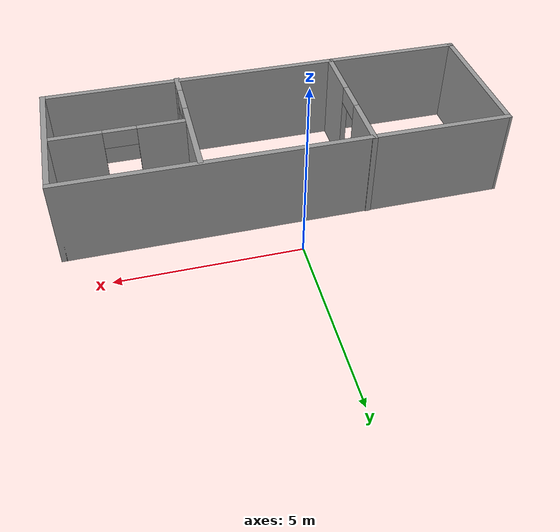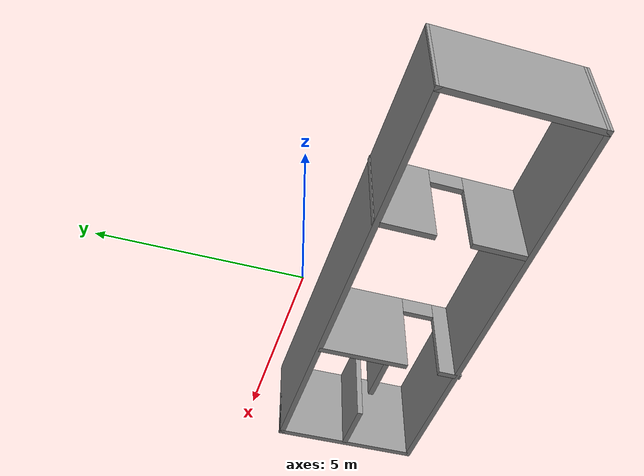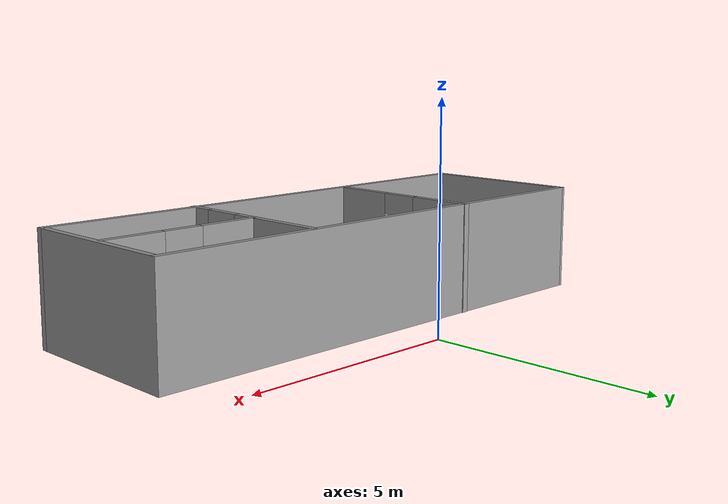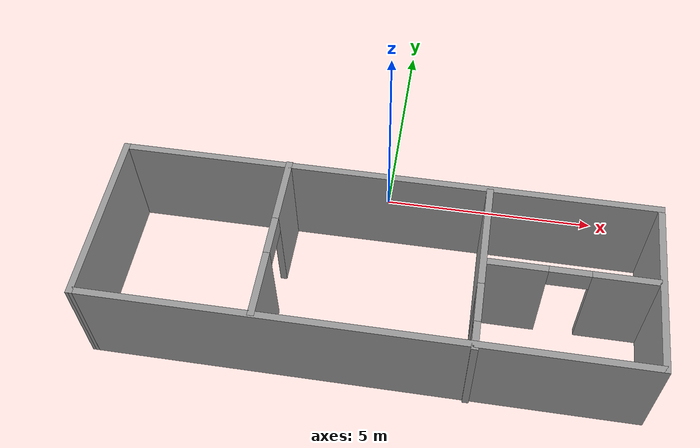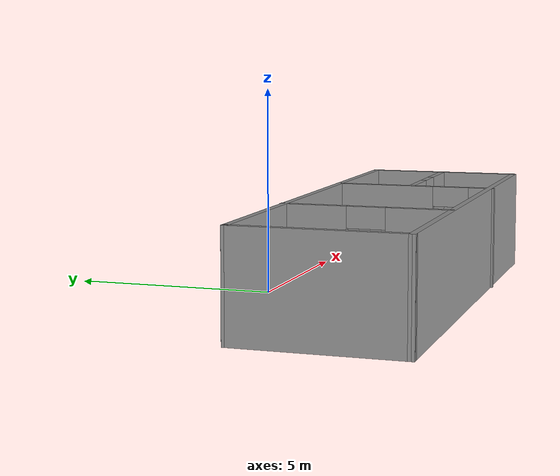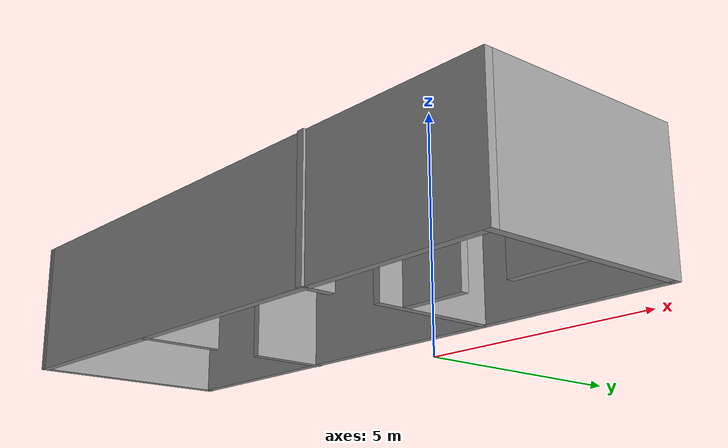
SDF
<?xml version='1.0'?>
<sdf version='1.7'>
  <model name='world'>
    <pose>0.089807 -2.5675 0 0 -0 0</pose>
    <link name='Wall_11'>
      <collision name='Wall_11_Collision'>
        <geometry>
          <box>
            <size>12.23 0.15 2.5</size>
          </box>
        </geometry>
        <pose>0 0 1.25 0 -0 0</pose>
      </collision>
      <visual name='Wall_11_Visual'>
        <pose>0 0 1.25 0 -0 0</pose>
        <geometry>
          <box>
            <size>12.23 0.15 2.5</size>
          </box>
        </geometry>
        <material>
          <script>
            <uri>file://media/materials/scripts/gazebo.material</uri>
            <name>Gazebo/Grey</name>
          </script>
          <ambient>1 1 1 1</ambient>
        </material>
        <meta>
          <layer>0</layer>
        </meta>
      </visual>
      <pose>0.010193 1.4275 0 0 -0 0</pose>
    </link>
    <link name='Wall_12'>
      <collision name='Wall_12_Collision'>
        <geometry>
          <box>
            <size>4.02 0.15 2.5</size>
          </box>
        </geometry>
        <pose>0 0 1.25 0 -0 0</pose>
      </collision>
      <visual name='Wall_12_Visual'>
        <pose>0 0 1.25 0 -0 0</pose>
        <geometry>
          <box>
            <size>4.02 0.15 2.5</size>
          </box>
        </geometry>
        <material>
          <script>
            <uri>file://media/materials/scripts/gazebo.material</uri>
            <name>Gazebo/Grey</name>
          </script>
          <ambient>1 1 1 1</ambient>
        </material>
        <meta>
          <layer>0</layer>
        </meta>
      </visual>
      <pose>6.05019 -0.5075 0 0 -0 -1.5708</pose>
    </link>
    <link name='Wall_17'>
      <pose>-2.23981 -0.4775 0 0 -0 -1.5708</pose>
      <visual name='Wall_17_Visual_0'>
        <pose>-1.2175 0 1.25 0 -0 0</pose>
        <geometry>
          <box>
            <size>1.565 0.15 2.5</size>
          </box>
        </geometry>
        <material>
          <script>
            <uri>file://media/materials/scripts/gazebo.material</uri>
            <name>Gazebo/Grey</name>
          </script>
          <ambient>1 1 1 1</ambient>
        </material>
        <meta>
          <layer>0</layer>
        </meta>
      </visual>
      <collision name='Wall_17_Collision_0'>
        <geometry>
          <box>
            <size>1.565 0.15 2.5</size>
          </box>
        </geometry>
        <pose>-1.2175 0 1.25 0 -0 0</pose>
      </collision>
      <visual name='Wall_17_Visual_1'>
        <pose>1.2325 0 1.25 0 -0 0</pose>
        <geometry>
          <box>
            <size>1.535 0.15 2.5</size>
          </box>
        </geometry>
        <material>
          <script>
            <uri>file://media/materials/scripts/gazebo.material</uri>
            <name>Gazebo/Grey</name>
          </script>
          <ambient>1 1 1 1</ambient>
        </material>
        <meta>
          <layer>0</layer>
        </meta>
      </visual>
      <collision name='Wall_17_Collision_1'>
        <geometry>
          <box>
            <size>1.535 0.15 2.5</size>
          </box>
        </geometry>
        <pose>1.2325 0 1.25 0 -0 0</pose>
      </collision>
      <visual name='Wall_17_Visual_2'>
        <pose>0.015 0 2.25 0 -0 0</pose>
        <geometry>
          <box>
            <size>0.9 0.15 0.5</size>
          </box>
        </geometry>
        <material>
          <script>
            <uri>file://media/materials/scripts/gazebo.material</uri>
            <name>Gazebo/Grey</name>
          </script>
          <ambient>1 1 1 1</ambient>
        </material>
        <meta>
          <layer>0</layer>
        </meta>
      </visual>
      <collision name='Wall_17_Collision_2'>
        <geometry>
          <box>
            <size>0.9 0.15 0.5</size>
          </box>
        </geometry>
        <pose>0.015 0 2.25 0 -0 0</pose>
      </collision>
    </link>
    <link name='Wall_19'>
      <pose>2.31019 -0.5675 0 0 -0 -1.5708</pose>
      <visual name='Wall_19_Visual_0'>
        <pose>-0.7725 0 1.25 0 -0 0</pose>
        <geometry>
          <box>
            <size>2.455 0.15 2.5</size>
          </box>
        </geometry>
        <material>
          <script>
            <uri>file://media/materials/scripts/gazebo.material</uri>
            <name>Gazebo/Grey</name>
          </script>
          <ambient>1 1 1 1</ambient>
        </material>
        <meta>
          <layer>0</layer>
        </meta>
      </visual>
      <collision name='Wall_19_Collision_0'>
        <geometry>
          <box>
            <size>2.455 0.15 2.5</size>
          </box>
        </geometry>
        <pose>-0.7725 0 1.25 0 -0 0</pose>
      </collision>
      <visual name='Wall_19_Visual_1'>
        <pose>1.6775 0 1.25 0 -0 0</pose>
        <geometry>
          <box>
            <size>0.645 0.15 2.5</size>
          </box>
        </geometry>
        <material>
          <script>
            <uri>file://media/materials/scripts/gazebo.material</uri>
            <name>Gazebo/Grey</name>
          </script>
          <ambient>1 1 1 1</ambient>
        </material>
        <meta>
          <layer>0</layer>
        </meta>
      </visual>
      <collision name='Wall_19_Collision_1'>
        <geometry>
          <box>
            <size>0.645 0.15 2.5</size>
          </box>
        </geometry>
        <pose>1.6775 0 1.25 0 -0 0</pose>
      </collision>
      <visual name='Wall_19_Visual_2'>
        <pose>0.905 0 2.25 0 -0 0</pose>
        <geometry>
          <box>
            <size>0.9 0.15 0.5</size>
          </box>
        </geometry>
        <material>
          <script>
            <uri>file://media/materials/scripts/gazebo.material</uri>
            <name>Gazebo/Grey</name>
          </script>
          <ambient>1 1 1 1</ambient>
        </material>
        <meta>
          <layer>0</layer>
        </meta>
      </visual>
      <collision name='Wall_19_Collision_2'>
        <geometry>
          <box>
            <size>0.9 0.15 0.5</size>
          </box>
        </geometry>
        <pose>0.905 0 2.25 0 -0 0</pose>
      </collision>
    </link>
    <link name='Wall_23'>
      <collision name='Wall_23_Collision'>
        <geometry>
          <box>
            <size>12.25 0.15 2.5</size>
          </box>
        </geometry>
        <pose>0 0 1.25 0 -0 0</pose>
      </collision>
      <visual name='Wall_23_Visual'>
        <pose>0 0 1.25 0 -0 0</pose>
        <geometry>
          <box>
            <size>12.25 0.15 2.5</size>
          </box>
        </geometry>
        <material>
          <script>
            <uri>file://media/materials/scripts/gazebo.material</uri>
            <name>Gazebo/Grey</name>
          </script>
          <ambient>1 1 1 1</ambient>
        </material>
        <meta>
          <layer>0</layer>
        </meta>
      </visual>
      <pose>0.000193 -2.4425 0 0 -0 3.14159</pose>
    </link>
    <link name='Wall_25'>
      <collision name='Wall_25_Collision'>
        <geometry>
          <box>
            <size>4.02005 0.15 2.5</size>
          </box>
        </geometry>
        <pose>0 0 1.25 0 -0 0</pose>
      </collision>
      <visual name='Wall_25_Visual'>
        <pose>0 0 1.25 0 -0 0</pose>
        <geometry>
          <box>
            <size>4.02005 0.15 2.5</size>
          </box>
        </geometry>
        <material>
          <script>
            <uri>file://media/materials/scripts/gazebo.material</uri>
            <name>Gazebo/Grey</name>
          </script>
          <ambient>1 1 1 1</ambient>
        </material>
        <meta>
          <layer>0</layer>
        </meta>
      </visual>
      <pose>-6.03981 -0.5075 0 0 -0 -1.57596</pose>
    </link>
    <link name='Wall_27'>
      <pose>4.14019 -0.4625 0 0 -0 0</pose>
      <visual name='Wall_27_Visual_0'>
        <pose>-1.1675 0 1.25 0 -0 0</pose>
        <geometry>
          <box>
            <size>1.415 0.15 2.5</size>
          </box>
        </geometry>
        <material>
          <script>
            <uri>file://media/materials/scripts/gazebo.material</uri>
            <name>Gazebo/Grey</name>
          </script>
          <ambient>1 1 1 1</ambient>
        </material>
        <meta>
          <layer>0</layer>
        </meta>
      </visual>
      <collision name='Wall_27_Collision_0'>
        <geometry>
          <box>
            <size>1.415 0.15 2.5</size>
          </box>
        </geometry>
        <pose>-1.1675 0 1.25 0 -0 0</pose>
      </collision>
      <visual name='Wall_27_Visual_1'>
        <pose>1.1575 0 1.25 0 -0 0</pose>
        <geometry>
          <box>
            <size>1.435 0.15 2.5</size>
          </box>
        </geometry>
        <material>
          <script>
            <uri>file://media/materials/scripts/gazebo.material</uri>
            <name>Gazebo/Grey</name>
          </script>
          <ambient>1 1 1 1</ambient>
        </material>
        <meta>
          <layer>0</layer>
        </meta>
      </visual>
      <collision name='Wall_27_Collision_1'>
        <geometry>
          <box>
            <size>1.435 0.15 2.5</size>
          </box>
        </geometry>
        <pose>1.1575 0 1.25 0 -0 0</pose>
      </collision>
      <visual name='Wall_27_Visual_2'>
        <pose>-0.01 0 2.25 0 -0 0</pose>
        <geometry>
          <box>
            <size>0.9 0.15 0.5</size>
          </box>
        </geometry>
        <material>
          <script>
            <uri>file://media/materials/scripts/gazebo.material</uri>
            <name>Gazebo/Grey</name>
          </script>
          <ambient>1 1 1 1</ambient>
        </material>
        <meta>
          <layer>0</layer>
        </meta>
      </visual>
      <collision name='Wall_27_Collision_2'>
        <geometry>
          <box>
            <size>0.9 0.15 0.5</size>
          </box>
        </geometry>
        <pose>-0.01 0 2.25 0 -0 0</pose>
      </collision>
    </link>
    <static>1</static>
  </model>
</sdf>
